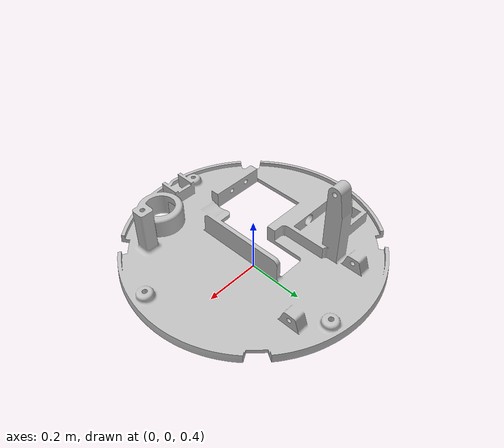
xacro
<?xml version="1.0" ?>
<robot name="xpider_base_link" xmlns:xacro="http://ros.org/wiki/xacro">
<xacro:include filename="$(find xpider_resources)/urdf/common_materials.xacro"/>
<xacro:include filename="$(find xpider_resources)/urdf/common_constants.xacro"/>

    <link name="base_link">
    <visual>
      <origin xyz="0 0 ${height_base}" rpy="0 0 0"/>
      <geometry>
        <mesh filename="package://xpider_descriptions/meshes/base_link.stl" scale="${ratio_stl} ${ratio_stl} ${ratio_stl}"/>
      </geometry>
      <xacro:material_xpider_greyish />
      </visual>
      <collision>
        <origin xyz="0 0 ${height_base}" rpy="0 0 0"/>
        <geometry>
          <mesh filename="package://xpider_descriptions/meshes/base_link.stl" scale="${ratio_stl} ${ratio_stl} ${ratio_stl}"/>
        </geometry>
      </collision>
    </link>
</robot>

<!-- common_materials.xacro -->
<robot xmlns:xacro="http://ros.org/wiki/xacro">
  <xacro:include filename="$(find xpider_resources)/urdf/common_colours.xacro"/>

  <xacro:macro name="material_xpider_yellow">
    <material name="">
      <color rgba="${color_xpider_yellow}"/>
    </material>
  </xacro:macro>

  <xacro:macro name="material_xpider_white">
    <material name="">
      <color rgba="${color_xpider_white}"/>
    </material>
  </xacro:macro>

  <xacro:macro name="material_xpider_black">
    <material name="">
      <color rgba="${color_xpider_black}"/>
    </material>
  </xacro:macro>

  <xacro:macro name="material_xpider_grey">
    <material name="">
      <color rgba="${color_xpider_grey}"/>
    </material>
  </xacro:macro>

  <xacro:macro name="material_xpider_greyish">
    <material name="">
      <color rgba="${color_xpider_greyish}"/>
    </material>
  </xacro:macro>

</robot>

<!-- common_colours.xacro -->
<robot xmlns:xacro="http://ros.org/wiki/xacro">

  <!-- RAL 1021 -->
  <xacro:property name="color_xpider_yellow"   value="0.96 0.76 0.13 1.0" />
  <!-- RAL 9002 -->
  <xacro:property name="color_xpider_white"    value="0.86 0.85 0.81 1.0" />
  <!-- RAL 7024 -->
  <xacro:property name="color_xpider_grey"     value="0.34 0.35 0.36 1.0" />

  <!-- approximations -->
  <xacro:property name="color_xpider_black"    value="0.15 0.15 0.15 1.0" />
  <xacro:property name="color_xpider_greyish"  value="0.75 0.75 0.75 1.0" />

</robot>

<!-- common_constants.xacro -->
<robot xmlns:xacro="http://ros.org/wiki/xacro">

  <!-- Pi, the ratio of a circle's circumference to its diameter -->
  <xacro:property name="m_pi" value="3.1415926535" />
  <!-- Pi divided by two -->
  <xacro:property name="m_pi_2" value="1.570796327" />
  <!-- 3Pi divided by two -->
  <xacro:property name="m_3_pi_2" value="2.35619449" />
  <!-- 3Pi divided by two -->
  <xacro:property name="m_2_pi_3" value="2.09439510239" />
  <!-- Pi divided by four -->
  <xacro:property name="m_pi_4" value="0.785398163" />
  <!-- Pi divided by three -->
  <xacro:property name="m_pi_3" value="1.0471975512" />
  <!-- Pi divided by six -->
  <xacro:property name="m_pi_6" value="0.52359877559" />

  <xacro:property name="cos_m_2_pi_3" value="-0.5" />
  <xacro:property name="sin_m_2_pi_3" value="0.86602540378" />
  <xacro:property name="cos_m_4_pi_3" value="-0.5" />
  <xacro:property name="sin_m_4_pi_3" value="-0.86602540378" />

  <xacro:property name="ratio_stl" value="0.01006046568"/>

  <xacro:property name="height_base" value="${48.705498889*ratio_stl}"/>
  <xacro:property name="height_step" value="0.04"/>
  <xacro:property name="height_leg" value="${height_step/2 + 0.007}"/>
  <xacro:property name="base_link_to_step_height" value="${height_base-0.28}"/>
  <xacro:property name="base_link_to_step_up" value="${height_base - 0.05}"/>
  <xacro:property name="diameter_step" value="${53.7748467325*ratio_stl}" />
  <xacro:property name="diameter_step_up" value="${26*ratio_stl}" />

</robot>
